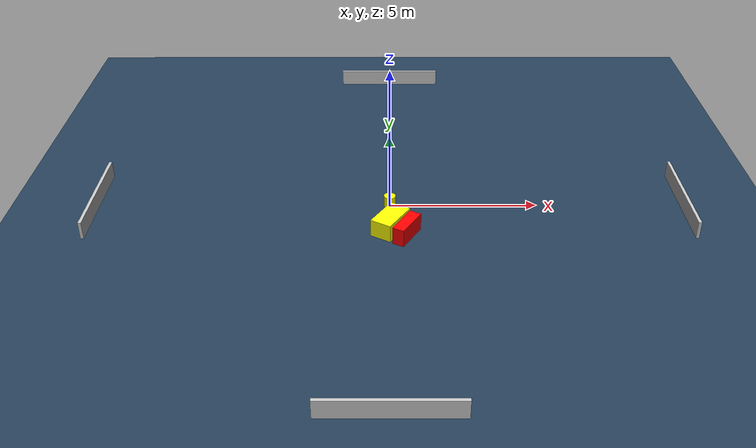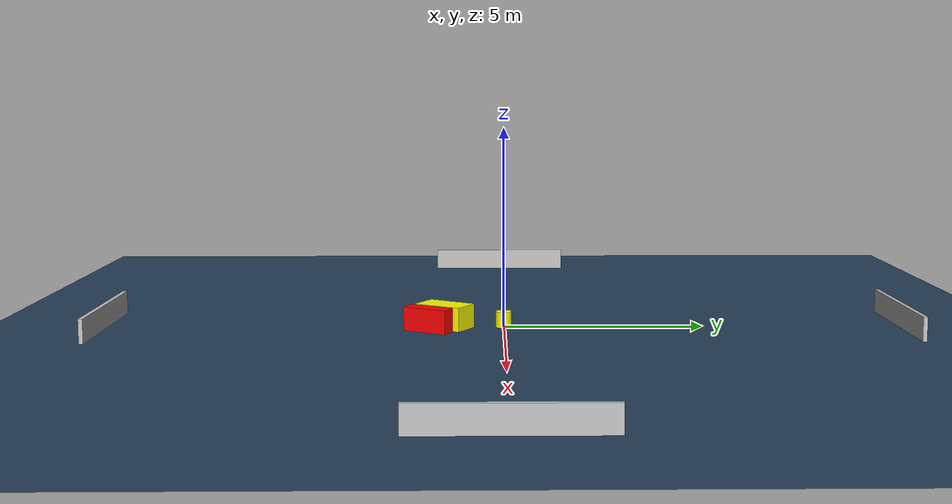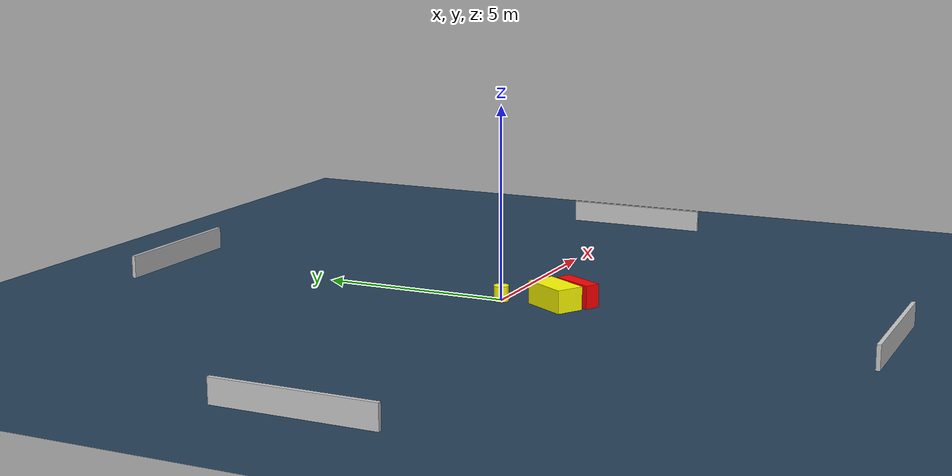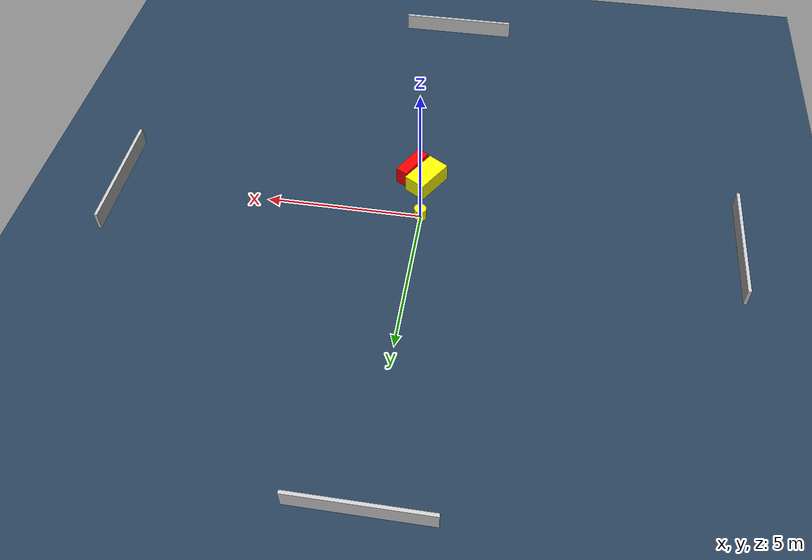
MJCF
<?xml version="1.0" ?>
<mujoco model="generated_environment">
  <option timestep="0.01" integrator="RK4" cone="elliptic"/>
  <default>
    <geom density="1"/>
  </default>
  <asset>
    <texture builtin="gradient" height="3072" name="skybox" rgb1="0.3 0.5 0.7" rgb2="0 0 0" type="skybox" width="512"/>
    <texture builtin="checker" height="300" name="groundplane" rgb1="0.2 0.3 0.4" rgb2="0.1 0.2 0.3" type="2d" width="300"/>
    <material name="groundplane" reflectance="0.2" texrepeat="5 5" texture="groundplane"/>
  </asset>
  <worldbody>
    <light dir="0 0 -1" directional="true" pos="0 0 1.5"/>
    <geom condim="3" friction="0.5 0.005 0.001" material="groundplane" name="floor" pos="0 0 0" size="0 0 0.05" type="plane"/>
    <body name="walls">
      <geom name="wall_1" condim="4" pos="-10.0 0.0 0.3" rgba="0.800000011920929 0.800000011920929 0.800000011920929 1.0" size="0.05 2.0 0.3" type="box"/>
      <geom name="wall_2" condim="4" pos="10.0 0.0 0.3" rgba="0.800000011920929 0.800000011920929 0.800000011920929 1.0" size="0.05 2.0 0.3" type="box"/>
      <geom name="wall_3" condim="4" pos="0.0 -10.0 0.3" rgba="0.800000011920929 0.800000011920929 0.800000011920929 1.0" size="2.0 0.05 0.3" type="box"/>
      <geom name="wall_4" condim="4" pos="0.0 10.0 0.3" rgba="0.800000011920929 0.800000011920929 0.800000011920929 1.0" size="2.0 0.05 0.3" type="box"/>
    </body>
    <body name="robot">
      <joint name="joint_x" type="slide" pos="0 0 0" axis="1 0 0"/>
      <joint name="joint_y" type="slide" pos="0 0 0" axis="0 1 0"/>
      <geom name="robot" type="cylinder" pos="0.0 0.0 0.2" size="0.2 0.2 0.0" mass="5.0" friction="1.0 0.005 0.0001" condim="4" rgba="1.0 1.0 0.0 1.0"/>
    </body>
    <body name="obstacle_1_movable">
      <geom name="obstacle_1_movable" condim="4" pos="0.021610660020934237 -1.4790512617539118 0.3" euler="0 0 238.76235334704913" friction="0.0 0.005 0.001" rgba="1.0 1.0 0.0 1.0" size="0.6405399126627846 0.3680224306643908 0.3" type="box" mass="0.1"/>
      <joint type="free"/>
    </body>
    <body name="obstacle_2_static">
      <geom name="obstacle_2_static" condim="4" pos="0.5490269289005246 -1.8753189491196296 0.3" euler="0 0 240.82424239578714" friction="0.0 0.005 0.001" rgba="1.0 0.0 0.0 1.0" size="0.5935251601520173 0.20259042338545308 0.3" type="box"/>
    </body>
  </worldbody>
  <actuator>
    <motor name="actuator_x" joint="joint_x" gear="1" ctrlrange="-1 1"/>
    <motor name="actuator_y" joint="joint_y" gear="1" ctrlrange="-1 1"/>
  </actuator>
</mujoco>
